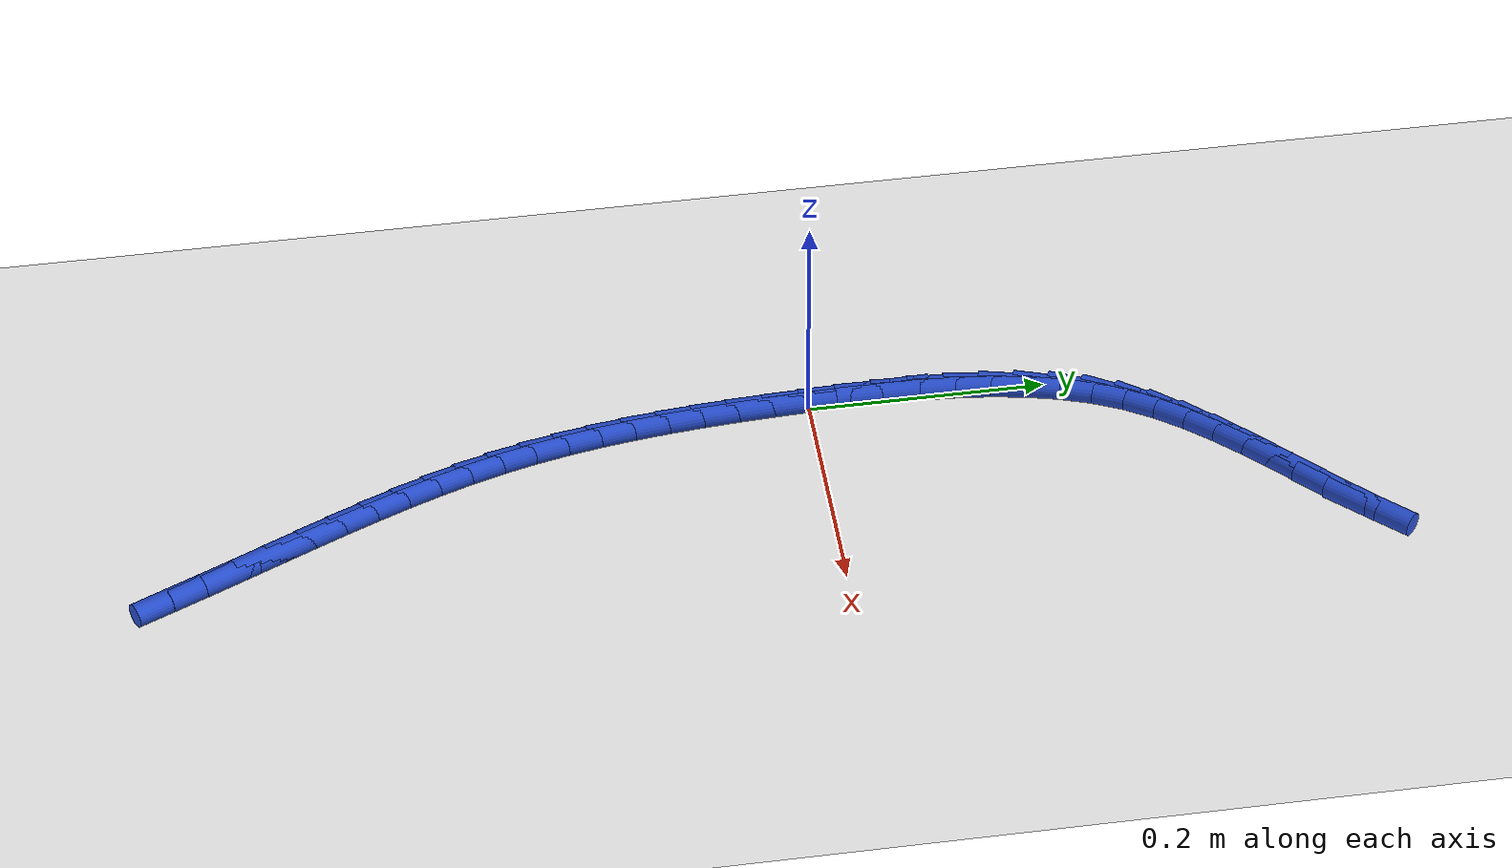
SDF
<sdf version="1.6">
 <world name="default">
  <model name="ground_plane">
   <static>1</static>
   <link name="link">
    <collision name="collision">
     <geometry><plane><normal>0 0 1</normal><size>100 100</size></plane></geometry>
     <surface><friction><ode><mu>100</mu><mu2>50</mu2></ode></friction></surface>
    </collision>
    <visual name="visual">
     <cast_shadows>0</cast_shadows>
     <geometry><plane><normal>0 0 1</normal><size>100 100</size></plane></geometry>
     <material>
      <script><uri>file://media/materials/scripts/gazebo.material</uri><name>Gazebo/WhiteGlow</name></script>
     </material>
    </visual>
   </link>
  </model>
  <model name="line">
   <link name="link_0">
    <pose>4.662069341687669e-18 -8.326672684688674e-17 0.01 0 1.57 -1.539609658872592</pose>
    <collision name="collision">
     <geometry><cylinder><radius>0.01</radius><length>0.08</length></cylinder></geometry>
    </collision>
    <visual name="visual">
     <material>
      <script><name>Gazebo/Blue</name><uri>file://media/materials/scripts/gazebo.material</uri></script>
     </material>
     <geometry><cylinder><radius>0.01</radius><length>0.08</length></cylinder></geometry>
    </visual>
   </link>
   <link name="link_1">
    <pose>-0.000966400616148828 0.03097757312513372 0.01 0 1.57 -1.5587502622924951</pose>
    <collision name="collision">
     <geometry><cylinder><radius>0.01</radius><length>0.08</length></cylinder></geometry>
    </collision>
    <visual name="visual">
     <material>
      <script><name>Gazebo/Blue</name><uri>file://media/materials/scripts/gazebo.material</uri></script>
     </material>
     <geometry><cylinder><radius>0.01</radius><length>0.08</length></cylinder></geometry>
    </visual>
   </link>
   <link name="link_2">
    <pose>-0.001340816626458476 0.062058089076894654 0.01 0 1.57 1.5545285447388046</pose>
    <collision name="collision">
     <geometry><cylinder><radius>0.01</radius><length>0.08</length></cylinder></geometry>
    </collision>
    <visual name="visual">
     <material>
      <script><name>Gazebo/Blue</name><uri>file://media/materials/scripts/gazebo.material</uri></script>
     </material>
     <geometry><cylinder><radius>0.01</radius><length>0.08</length></cylinder></geometry>
    </visual>
   </link>
   <link name="link_3">
    <pose>-0.0008371086384844982 0.09301888948408303 0.01 0 1.57 1.5163740549494504</pose>
    <collision name="collision">
     <geometry><cylinder><radius>0.01</radius><length>0.08</length></cylinder></geometry>
    </collision>
    <visual name="visual">
     <material>
      <script><name>Gazebo/Blue</name><uri>file://media/materials/scripts/gazebo.material</uri></script>
     </material>
     <geometry><cylinder><radius>0.01</radius><length>0.08</length></cylinder></geometry>
    </visual>
   </link>
   <link name="link_4">
    <pose>0.0008308627402175395 0.12363731597549919 0.01 0 1.57 1.467405186007337</pose>
    <collision name="collision">
     <geometry><cylinder><radius>0.01</radius><length>0.08</length></cylinder></geometry>
    </collision>
    <visual name="visual">
     <material>
      <script><name>Gazebo/Blue</name><uri>file://media/materials/scripts/gazebo.material</uri></script>
     </material>
     <geometry><cylinder><radius>0.01</radius><length>0.08</length></cylinder></geometry>
    </visual>
   </link>
   <link name="link_5">
    <pose>0.0039492369020920765 0.15369071017994346 0.01 0 1.57 1.4064024631591359</pose>
    <collision name="collision">
     <geometry><cylinder><radius>0.01</radius><length>0.08</length></cylinder></geometry>
    </collision>
    <visual name="visual">
     <material>
      <script><name>Gazebo/Blue</name><uri>file://media/materials/scripts/gazebo.material</uri></script>
     </material>
     <geometry><cylinder><radius>0.01</radius><length>0.08</length></cylinder></geometry>
    </visual>
   </link>
   <link name="link_6">
    <pose>0.008804153239583558 0.18295641372621615 0.01 0 1.57 1.332030836499823</pose>
    <collision name="collision">
     <geometry><cylinder><radius>0.01</radius><length>0.08</length></cylinder></geometry>
    </collision>
    <visual name="visual">
     <material>
      <script><name>Gazebo/Blue</name><uri>file://media/materials/scripts/gazebo.material</uri></script>
     </material>
     <geometry><cylinder><radius>0.01</radius><length>0.08</length></cylinder></geometry>
    </visual>
   </link>
   <link name="link_7">
    <pose>0.01568175114513641 0.21121176824311758 0.01 0 1.57 1.2430969351232288</pose>
    <collision name="collision">
     <geometry><cylinder><radius>0.01</radius><length>0.08</length></cylinder></geometry>
    </collision>
    <visual name="visual">
     <material>
      <script><name>Gazebo/Blue</name><uri>file://media/materials/scripts/gazebo.material</uri></script>
     </material>
     <geometry><cylinder><radius>0.01</radius><length>0.08</length></cylinder></geometry>
    </visual>
   </link>
   <link name="link_8">
    <pose>0.024868170011195075 0.23823411535944805 0.01 0 1.57 1.1390304636194675</pose>
    <collision name="collision">
     <geometry><cylinder><radius>0.01</radius><length>0.08</length></cylinder></geometry>
    </collision>
    <visual name="visual">
     <material>
      <script><name>Gazebo/Blue</name><uri>file://media/materials/scripts/gazebo.material</uri></script>
     </material>
     <geometry><cylinder><radius>0.01</radius><length>0.08</length></cylinder></geometry>
    </visual>
   </link>
   <link name="link_9">
    <pose>0.03664859619295909 0.26380149346409615 0.01 0 1.57 1.0293367742738542</pose>
    <collision name="collision">
     <geometry><cylinder><radius>0.01</radius><length>0.08</length></cylinder></geometry>
    </collision>
    <visual name="visual">
     <material>
      <script><name>Gazebo/Blue</name><uri>file://media/materials/scripts/gazebo.material</uri></script>
     </material>
     <geometry><cylinder><radius>0.01</radius><length>0.08</length></cylinder></geometry>
    </visual>
   </link>
   <link name="link_10">
    <pose>0.05110571576127611 0.28783998774764086 0.01 0 1.57 0.936071537319956</pose>
    <collision name="collision">
     <geometry><cylinder><radius>0.01</radius><length>0.08</length></cylinder></geometry>
    </collision>
    <visual name="visual">
     <material>
      <script><name>Gazebo/Blue</name><uri>file://media/materials/scripts/gazebo.material</uri></script>
     </material>
     <geometry><cylinder><radius>0.01</radius><length>0.08</length></cylinder></geometry>
    </visual>
   </link>
   <link name="link_11">
    <pose>0.06787018557350744 0.31060615937772645 0.01 0 1.57 0.8632363737783122</pose>
    <collision name="collision">
     <geometry><cylinder><radius>0.01</radius><length>0.08</length></cylinder></geometry>
    </collision>
    <visual name="visual">
     <material>
      <script><name>Gazebo/Blue</name><uri>file://media/materials/scripts/gazebo.material</uri></script>
     </material>
     <geometry><cylinder><radius>0.01</radius><length>0.08</length></cylinder></geometry>
    </visual>
   </link>
   <link name="link_12">
    <pose>0.08651146518915179 0.3324013105170515 0.01 0 1.57 0.8105762616773072</pose>
    <collision name="collision">
     <geometry><cylinder><radius>0.01</radius><length>0.08</length></cylinder></geometry>
    </collision>
    <visual name="visual">
     <material>
      <script><name>Gazebo/Blue</name><uri>file://media/materials/scripts/gazebo.material</uri></script>
     </material>
     <geometry><cylinder><radius>0.01</radius><length>0.08</length></cylinder></geometry>
    </visual>
   </link>
   <link name="link_13">
    <pose>0.10659901416770784 0.3535267433283146 0.01 0 1.57 0.7771265216971788</pose>
    <collision name="collision">
     <geometry><cylinder><radius>0.01</radius><length>0.08</length></cylinder></geometry>
    </collision>
    <visual name="visual">
     <material>
      <script><name>Gazebo/Blue</name><uri>file://media/materials/scripts/gazebo.material</uri></script>
     </material>
     <geometry><cylinder><radius>0.01</radius><length>0.08</length></cylinder></geometry>
    </visual>
   </link>
   <link name="link_14">
    <pose>0.12770229206867434 0.3742837599742141 0.01 0 1.57 0.7618394701901783</pose>
    <collision name="collision">
     <geometry><cylinder><radius>0.01</radius><length>0.08</length></cylinder></geometry>
    </collision>
    <visual name="visual">
     <material>
      <script><name>Gazebo/Blue</name><uri>file://media/materials/scripts/gazebo.material</uri></script>
     </material>
     <geometry><cylinder><radius>0.01</radius><length>0.08</length></cylinder></geometry>
    </visual>
   </link>
   <link name="link_15">
    <pose>0.14939075845154995 0.39497366261744865 0.01 0 1.57 0.7639124901062196</pose>
    <collision name="collision">
     <geometry><cylinder><radius>0.01</radius><length>0.08</length></cylinder></geometry>
    </collision>
    <visual name="visual">
     <material>
      <script><name>Gazebo/Blue</name><uri>file://media/materials/scripts/gazebo.material</uri></script>
     </material>
     <geometry><cylinder><radius>0.01</radius><length>0.08</length></cylinder></geometry>
    </visual>
   </link>
   <link name="link_16">
    <pose>0.17123387287583336 0.4158977534207168 0.01 0 1.57 0.782896451284364</pose>
    <collision name="collision">
     <geometry><cylinder><radius>0.01</radius><length>0.08</length></cylinder></geometry>
    </collision>
    <visual name="visual">
     <material>
      <script><name>Gazebo/Blue</name><uri>file://media/materials/scripts/gazebo.material</uri></script>
     </material>
     <geometry><cylinder><radius>0.01</radius><length>0.08</length></cylinder></geometry>
    </visual>
   </link>
   <link name="link_17">
    <pose>0.19280109490102337 0.43735733454671694 0.01 0 1.57 0.8186500083368146</pose>
    <collision name="collision">
     <geometry><cylinder><radius>0.01</radius><length>0.08</length></cylinder></geometry>
    </collision>
    <visual name="visual">
     <material>
      <script><name>Gazebo/Blue</name><uri>file://media/materials/scripts/gazebo.material</uri></script>
     </material>
     <geometry><cylinder><radius>0.01</radius><length>0.08</length></cylinder></geometry>
    </visual>
   </link>
   <link name="link_221">
    <pose>0.15176865060301464 -0.5390438404601837 0.01 0 1.57 -1.1439325997560796</pose>
    <collision name="collision">
     <geometry><cylinder><radius>0.01</radius><length>0.08</length></cylinder></geometry>
    </collision>
    <visual name="visual">
     <material>
      <script><name>Gazebo/Blue</name><uri>file://media/materials/scripts/gazebo.material</uri></script>
     </material>
     <geometry><cylinder><radius>0.01</radius><length>0.08</length></cylinder></geometry>
    </visual>
   </link>
   <link name="link_222">
    <pose>0.1390649564802388 -0.5111132303797823 0.01 0 1.57 -1.1392000921595056</pose>
    <collision name="collision">
     <geometry><cylinder><radius>0.01</radius><length>0.08</length></cylinder></geometry>
    </collision>
    <visual name="visual">
     <material>
      <script><name>Gazebo/Blue</name><uri>file://media/materials/scripts/gazebo.material</uri></script>
     </material>
     <geometry><cylinder><radius>0.01</radius><length>0.08</length></cylinder></geometry>
    </visual>
   </link>
   <link name="link_223">
    <pose>0.1262948666841269 -0.4833855844318821 0.01 0 1.57 -1.134703464553221</pose>
    <collision name="collision">
     <geometry><cylinder><radius>0.01</radius><length>0.08</length></cylinder></geometry>
    </collision>
    <visual name="visual">
     <material>
      <script><name>Gazebo/Blue</name><uri>file://media/materials/scripts/gazebo.material</uri></script>
     </material>
     <geometry><cylinder><radius>0.01</radius><length>0.08</length></cylinder></geometry>
    </visual>
   </link>
   <link name="link_224">
    <pose>0.11348520630619988 -0.45589799683801074 0.01 0 1.57 -1.1356740610294576</pose>
    <collision name="collision">
     <geometry><cylinder><radius>0.01</radius><length>0.08</length></cylinder></geometry>
    </collision>
    <visual name="visual">
     <material>
      <script><name>Gazebo/Blue</name><uri>file://media/materials/scripts/gazebo.material</uri></script>
     </material>
     <geometry><cylinder><radius>0.01</radius><length>0.08</length></cylinder></geometry>
    </visual>
   </link>
   <link name="link_225">
    <pose>0.10078828973740672 -0.4285831266263477 0.01 0 1.57 -1.1423592189939502</pose>
    <collision name="collision">
     <geometry><cylinder><radius>0.01</radius><length>0.08</length></cylinder></geometry>
    </collision>
    <visual name="visual">
     <material>
      <script><name>Gazebo/Blue</name><uri>file://media/materials/scripts/gazebo.material</uri></script>
     </material>
     <geometry><cylinder><radius>0.01</radius><length>0.08</length></cylinder></geometry>
    </visual>
   </link>
   <link name="link_226">
    <pose>0.08835965263870905 -0.40137095200720113 0.01 0 1.57 -1.154877274552898</pose>
    <collision name="collision">
     <geometry><cylinder><radius>0.01</radius><length>0.08</length></cylinder></geometry>
    </collision>
    <visual name="visual">
     <material>
      <script><name>Gazebo/Blue</name><uri>file://media/materials/scripts/gazebo.material</uri></script>
     </material>
     <geometry><cylinder><radius>0.01</radius><length>0.08</length></cylinder></geometry>
    </visual>
   </link>
   <link name="link_227">
    <pose>0.07635483067106853 -0.37419145119088 0.01 0 1.57 -1.1733434165141643</pose>
    <collision name="collision">
     <geometry><cylinder><radius>0.01</radius><length>0.08</length></cylinder></geometry>
    </collision>
    <visual name="visual">
     <material>
      <script><name>Gazebo/Blue</name><uri>file://media/materials/scripts/gazebo.material</uri></script>
     </material>
     <geometry><cylinder><radius>0.01</radius><length>0.08</length></cylinder></geometry>
    </visual>
   </link>
   <link name="link_228">
    <pose>0.06492935949544684 -0.3469746023876927 0.01 0 1.57 -1.1978562383836262</pose>
    <collision name="collision">
     <geometry><cylinder><radius>0.01</radius><length>0.08</length></cylinder></geometry>
    </collision>
    <visual name="visual">
     <material>
      <script><name>Gazebo/Blue</name><uri>file://media/materials/scripts/gazebo.material</uri></script>
     </material>
     <geometry><cylinder><radius>0.01</radius><length>0.08</length></cylinder></geometry>
    </visual>
   </link>
   <link name="link_229">
    <pose>0.05423877477280551 -0.31965038380794775 0.01 0 1.57 -1.2284768972121645</pose>
    <collision name="collision">
     <geometry><cylinder><radius>0.01</radius><length>0.08</length></cylinder></geometry>
    </collision>
    <visual name="visual">
     <material>
      <script><name>Gazebo/Blue</name><uri>file://media/materials/scripts/gazebo.material</uri></script>
     </material>
     <geometry><cylinder><radius>0.01</radius><length>0.08</length></cylinder></geometry>
    </visual>
   </link>
   <link name="link_230">
    <pose>0.04443861216410603 -0.2921487736619531 0.01 0 1.57 -1.2652007624601085</pose>
    <collision name="collision">
     <geometry><cylinder><radius>0.01</radius><length>0.08</length></cylinder></geometry>
    </collision>
    <visual name="visual">
     <material>
      <script><name>Gazebo/Blue</name><uri>file://media/materials/scripts/gazebo.material</uri></script>
     </material>
     <geometry><cylinder><radius>0.01</radius><length>0.08</length></cylinder></geometry>
    </visual>
   </link>
   <link name="link_231">
    <pose>0.03568440733031054 -0.26439975016001876 0.01 0 1.57 -1.3071286491160015</pose>
    <collision name="collision">
     <geometry><cylinder><radius>0.01</radius><length>0.08</length></cylinder></geometry>
    </collision>
    <visual name="visual">
     <material>
      <script><name>Gazebo/Blue</name><uri>file://media/materials/scripts/gazebo.material</uri></script>
     </material>
     <geometry><cylinder><radius>0.01</radius><length>0.08</length></cylinder></geometry>
    </visual>
   </link>
   <link name="link_232">
    <pose>0.028109422501623918 -0.2363393272037759 0.01 0 1.57 -1.3481748744258248</pose>
    <collision name="collision">
     <geometry><cylinder><radius>0.01</radius><length>0.08</length></cylinder></geometry>
    </collision>
    <visual name="visual">
     <material>
      <script><name>Gazebo/Blue</name><uri>file://media/materials/scripts/gazebo.material</uri></script>
     </material>
     <geometry><cylinder><radius>0.01</radius><length>0.08</length></cylinder></geometry>
    </visual>
   </link>
   <link name="link_233">
    <pose>0.021682398896080098 -0.20794810087245277 0.01 0 1.57 -1.3854904437540219</pose>
    <collision name="collision">
     <geometry><cylinder><radius>0.01</radius><length>0.08</length></cylinder></geometry>
    </collision>
    <visual name="visual">
     <material>
      <script><name>Gazebo/Blue</name><uri>file://media/materials/scripts/gazebo.material</uri></script>
     </material>
     <geometry><cylinder><radius>0.01</radius><length>0.08</length></cylinder></geometry>
    </visual>
   </link>
   <link name="link_234">
    <pose>0.016298375522314727 -0.17922663919260098 0.01 0 1.57 -1.4189224794165647</pose>
    <collision name="collision">
     <geometry><cylinder><radius>0.01</radius><length>0.08</length></cylinder></geometry>
    </collision>
    <visual name="visual">
     <material>
      <script><name>Gazebo/Blue</name><uri>file://media/materials/scripts/gazebo.material</uri></script>
     </material>
     <geometry><cylinder><radius>0.01</radius><length>0.08</length></cylinder></geometry>
    </visual>
   </link>
   <link name="link_235">
    <pose>0.01185204452055868 -0.15017560418574916 0.01 0 1.57 -1.4484039004129186</pose>
    <collision name="collision">
     <geometry><cylinder><radius>0.01</radius><length>0.08</length></cylinder></geometry>
    </collision>
    <visual name="visual">
     <material>
      <script><name>Gazebo/Blue</name><uri>file://media/materials/scripts/gazebo.material</uri></script>
     </material>
     <geometry><cylinder><radius>0.01</radius><length>0.08</length></cylinder></geometry>
    </visual>
   </link>
   <link name="link_236">
    <pose>0.00823809803104287 -0.12079565787342628 0.01 0 1.57 -1.4739262818986225</pose>
    <collision name="collision">
     <geometry><cylinder><radius>0.01</radius><length>0.08</length></cylinder></geometry>
    </collision>
    <visual name="visual">
     <material>
      <script><name>Gazebo/Blue</name><uri>file://media/materials/scripts/gazebo.material</uri></script>
     </material>
     <geometry><cylinder><radius>0.01</radius><length>0.08</length></cylinder></geometry>
    </visual>
   </link>
   <link name="link_237">
    <pose>0.0053512281939982025 -0.09108746227716118 0.01 0 1.57 -1.4955253863615365</pose>
    <collision name="collision">
     <geometry><cylinder><radius>0.01</radius><length>0.08</length></cylinder></geometry>
    </collision>
    <visual name="visual">
     <material>
      <script><name>Gazebo/Blue</name><uri>file://media/materials/scripts/gazebo.material</uri></script>
     </material>
     <geometry><cylinder><radius>0.01</radius><length>0.08</length></cylinder></geometry>
    </visual>
   </link>
   <link name="link_238">
    <pose>0.003086127149655519 -0.06105167941848191 0.01 0 1.57 -1.5132681693943635</pose>
    <collision name="collision">
     <geometry><cylinder><radius>0.01</radius><length>0.08</length></cylinder></geometry>
    </collision>
    <visual name="visual">
     <material>
      <script><name>Gazebo/Blue</name><uri>file://media/materials/scripts/gazebo.material</uri></script>
     </material>
     <geometry><cylinder><radius>0.01</radius><length>0.08</length></cylinder></geometry>
    </visual>
   </link>
   <link name="link_239">
    <pose>0.0013374870382458456 -0.0306889713189189 0.01 0 1.57 -1.5272418790346052</pose>
    <collision name="collision">
     <geometry><cylinder><radius>0.01</radius><length>0.08</length></cylinder></geometry>
    </collision>
    <visual name="visual">
     <material>
      <script><name>Gazebo/Blue</name><uri>file://media/materials/scripts/gazebo.material</uri></script>
     </material>
     <geometry><cylinder><radius>0.01</radius><length>0.08</length></cylinder></geometry>
    </visual>
   </link>
   <link name="link_240">
    <pose>1.4365678785432934e-17 -2.1510571102112408e-16 0.01 0 1.57 -1.537545454328073</pose>
    <collision name="collision">
     <geometry><cylinder><radius>0.01</radius><length>0.08</length></cylinder></geometry>
    </collision>
    <visual name="visual">
     <material>
      <script><name>Gazebo/Blue</name><uri>file://media/materials/scripts/gazebo.material</uri></script>
     </material>
     <geometry><cylinder><radius>0.01</radius><length>0.08</length></cylinder></geometry>
    </visual>
   </link>
   <link name="link_241">
    <pose>-0.0010316418248510725 0.031014572516745262 0.01 0 1.57 -1.5442831593547486</pose>
    <collision name="collision">
     <geometry><cylinder><radius>0.01</radius><length>0.08</length></cylinder></geometry>
    </collision>
    <visual name="visual">
     <material>
      <script><name>Gazebo/Blue</name><uri>file://media/materials/scripts/gazebo.material</uri></script>
     </material>
     <geometry><cylinder><radius>0.01</radius><length>0.08</length></cylinder></geometry>
    </visual>
   </link>
   <link name="link_242">
    <pose>-0.0018627462960765118 0.062354084209788704 0.01 0 1.57 -1.5409315234184005</pose>
    <collision name="collision">
     <geometry><cylinder><radius>0.01</radius><length>0.08</length></cylinder></geometry>
    </collision>
    <visual name="visual">
     <material>
      <script><name>Gazebo/Blue</name><uri>file://media/materials/scripts/gazebo.material</uri></script>
     </material>
     <geometry><cylinder><radius>0.01</radius><length>0.08</length></cylinder></geometry>
    </visual>
   </link>
  </model>
 </world>
</sdf>
